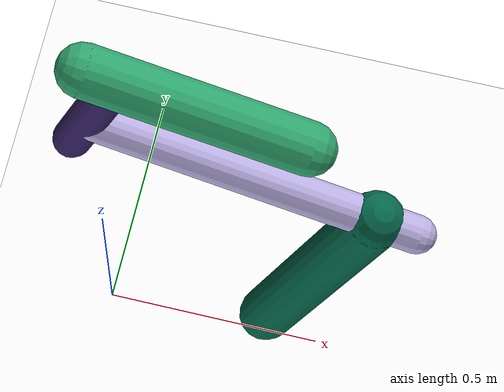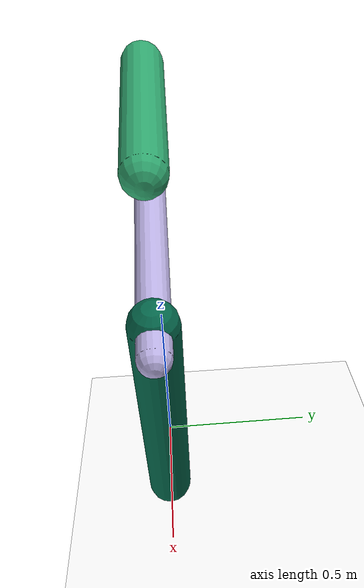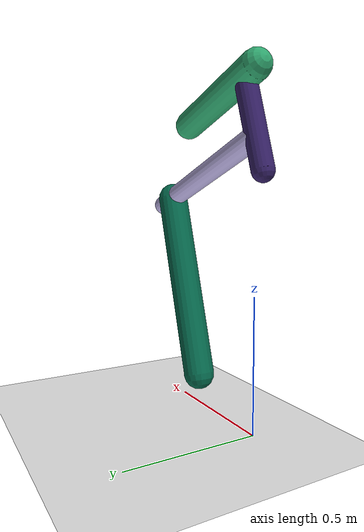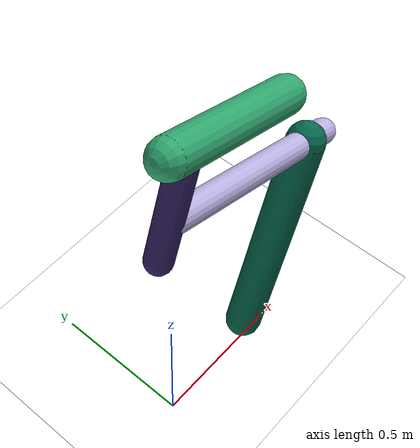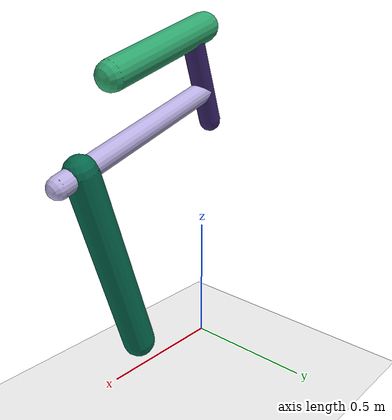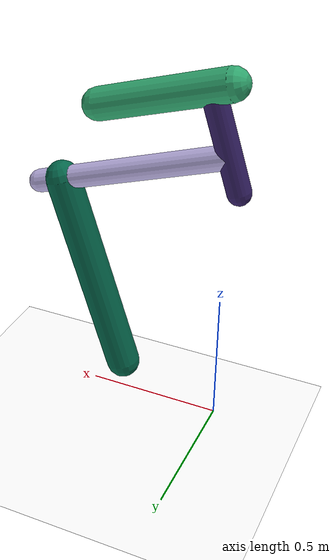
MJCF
<mujoco model="morphology">
  <option timestep="0.01"/>
  <default>
    <default class="/"/>
  </default>
  <asset>
    <texture name="texplane" type="2d" builtin="checker" rgb1="0.1 0.2 0.3" rgb2="0.2 0.3 0.4" width="300" height="300"/>
    <material name="MatPlane" class="/" texture="texplane" texrepeat="20 20" specular="1" shininess="1" reflectance="0.5"/>
  </asset>
  <worldbody>
    <light name="//unnamed_light_0" class="/" directional="true" pos="0 0 1.5" dir="0 0 -1.3" cutoff="1e+02" exponent="1" diffuse="1 1 1" specular="0.1 0.1 0.1"/>
    <geom name="ground" class="/" type="plane" size="15 15 0.5" material="MatPlane" rgba="1 1 1 1"/>
    <body name="body" pos="0 0 1.3">
      <geom name="geom0" class="/" type="capsule" contype="1" conaffinity="1" condim="3" size="0.057" rgba="0.19 0.66 0.44 1" friction="0.4 0.1 0.1" fromto="0 0 0 0.46 0 -0.14"/>
      <body name="body1" pos="0.067 0 -0.021">
        <geom name="geom1" class="/" type="capsule" contype="1" conaffinity="1" condim="3" size="0.042" rgba="0.21 0.13 0.4 1" friction="0.4 0.1 0.1" fromto="0 0 0 -0.11 0 -0.34"/>
        <body name="body2" pos="-0.069 0 -0.22">
          <geom name="geom2" class="/" type="capsule" contype="1" conaffinity="1" condim="3" size="0.042" rgba="0.74 0.7 0.9 1" friction="0.4 0.1 0.1" fromto="0 0 0 0.7 0 -0.23"/>
          <body name="body3" pos="0.61 0 -0.2">
            <geom name="geom3" class="/" type="capsule" contype="1" conaffinity="1" condim="3" size="0.063" rgba="0.018 0.41 0.3 1" friction="0.4 0.1 0.1" fromto="0 0 0 -0.23 0 -0.74"/>
            <joint name="joint3" class="/" type="hinge" axis="0 1 0" limited="true" stiffness="20" range="-40 40" armature="0.1" damping="2"/>
          </body>
          <joint name="joint2" class="/" type="hinge" axis="0 1 0" limited="true" stiffness="20" range="-41 41" armature="0.1" damping="2"/>
        </body>
        <joint name="joint1" class="/" type="hinge" axis="0 1 0" limited="true" stiffness="20" range="-46 46" armature="0.1" damping="2"/>
      </body>
      <joint name="rootx" class="/" type="slide" axis="1 0 0" limited="false" stiffness="0" armature="0" damping="0"/>
      <joint name="rootz" class="/" type="slide" axis="0 0 1" limited="false" stiffness="0" armature="0" damping="0"/>
      <joint name="rooty" class="/" type="hinge" axis="0 1 0" limited="false" stiffness="0" armature="0" damping="0"/>
    </body>
  </worldbody>
  <actuator>
    <motor name="motor3" class="/" ctrllimited="true" ctrlrange="-1 1" gear="2e+02" joint="joint3"/>
    <motor name="motor2" class="/" ctrllimited="true" ctrlrange="-1 1" gear="1.1e+02" joint="joint2"/>
    <motor name="motor1" class="/" ctrllimited="true" ctrlrange="-1 1" gear="1.2e+02" joint="joint1"/>
  </actuator>
  <sensor>
    <subtreelinvel name="velocity" body="body"/>
  </sensor>
</mujoco>
